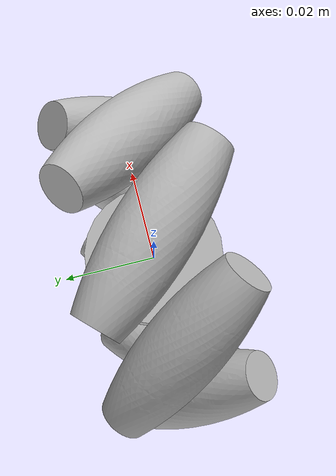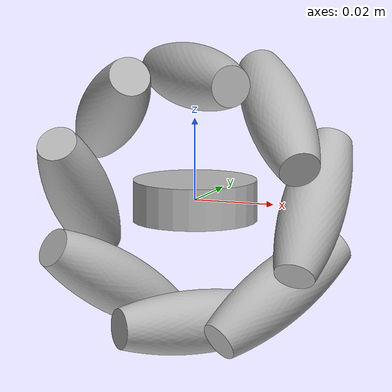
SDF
<sdf version="1.11">
 <model name="mecanum-wheel">
  <static>false</static>
  <link name="mecanum-base">
   <pose>0 0 0 0 0 0</pose>
   <visual name="mb-v">
    <geometry>
     <cylinder>
      <radius>0.015</radius>
      <length>0.01</length>
     </cylinder>
    </geometry>
   </visual>
   <collision name="mb-c">
    <geometry>
     <cylinder>
      <radius>0.015</radius>
      <length>0.01</length>
     </cylinder>
    </geometry>
   </collision>
  </link>
  <link name="mw-l1">
   <pose>0.0 0 0.03 0.0 -0.0 0.7853981633974483</pose>
   <inertial>
    <mass>0.00113845</mass>
    <inertia>
     <ixx>2.53776e-08</ixx>
     <ixy>0</ixy>
     <ixz>0</ixz>
     <iyy>2.53776e-08</iyy>
     <iyz>0</iyz>
     <izz>1.47666e-08</izz>
    </inertia>
    <pose frame="">0 0 0 0 0 0</pose>
   </inertial>
   <self_collide>0</self_collide>
   <kinematic>0</kinematic>
   <visual name="mw-l1-v">
    <geometry>
     <mesh>
      <uri>file://mecanum-roller.stl</uri>
      <scale>0.001 0.001 0.001</scale>
     </mesh>
    </geometry>
   </visual>
   <collision name="mw-l1-c">
    <geometry>
     <mesh>
      <uri>file://mecanum-roller.stl</uri>
      <scale>0.001 0.001 0.001</scale>
     </mesh>
    </geometry>
    <surface>
     <friction>
      <ode>
       <mu>1</mu>
       <mu2>1</mu2>
       <fdir1>0 0 0</fdir1>
       <slip1>1000</slip1>
       <slip2>0</slip2>
      </ode>
      <torsional>
       <coefficient>1</coefficient>
       <patch_radius>0</patch_radius>
       <surface_radius>0</surface_radius>
       <use_patch_radius>1</use_patch_radius>
       <ode>
        <slip>0</slip>
       </ode>
      </torsional>
     </friction>
     <bounce>
      <restitution_coefficient>0</restitution_coefficient>
      <threshold>1000000.0</threshold>
     </bounce>
     <contact>
      <collide_without_contact>0</collide_without_contact>
      <collide_without_contact_bitmask>1</collide_without_contact_bitmask>
      <collide_bitmask>1</collide_bitmask>
      <ode>
       <soft_cfm>0.5</soft_cfm>
       <soft_erp>0.8</soft_erp>
       <kp>1e+13</kp>
       <kd>1</kd>
       <max_vel>0.01</max_vel>
       <min_depth>0</min_depth>
      </ode>
      <bullet>
       <split_impulse>1</split_impulse>
       <split_impulse_penetration_threshold>-0.01</split_impulse_penetration_threshold>
       <soft_cfm>0.5</soft_cfm>
       <soft_erp>0.8</soft_erp>
       <kp>1e+13</kp>
       <kd>1</kd>
      </bullet>
     </contact>
    </surface>
   </collision>
  </link>
  <link name="mw-l2">
   <pose>0.021213203435596423 0 0.021213203435596427 0.6154797086703871 0.5235987755982989 0.9553166181245092</pose>
   <inertial>
    <mass>0.00113845</mass>
    <inertia>
     <ixx>2.53776e-08</ixx>
     <ixy>0</ixy>
     <ixz>0</ixz>
     <iyy>2.53776e-08</iyy>
     <iyz>0</iyz>
     <izz>1.47666e-08</izz>
    </inertia>
    <pose frame="">0 0 0 0 0 0</pose>
   </inertial>
   <self_collide>0</self_collide>
   <kinematic>0</kinematic>
   <visual name="mw-l2-v">
    <geometry>
     <mesh>
      <uri>file://mecanum-roller.stl</uri>
      <scale>0.001 0.001 0.001</scale>
     </mesh>
    </geometry>
   </visual>
   <collision name="mw-l2-c">
    <geometry>
     <mesh>
      <uri>file://mecanum-roller.stl</uri>
      <scale>0.001 0.001 0.001</scale>
     </mesh>
    </geometry>
    <surface>
     <friction>
      <ode>
       <mu>1</mu>
       <mu2>1</mu2>
       <fdir1>0 0 0</fdir1>
       <slip1>1000</slip1>
       <slip2>0</slip2>
      </ode>
      <torsional>
       <coefficient>1</coefficient>
       <patch_radius>0</patch_radius>
       <surface_radius>0</surface_radius>
       <use_patch_radius>1</use_patch_radius>
       <ode>
        <slip>0</slip>
       </ode>
      </torsional>
     </friction>
     <bounce>
      <restitution_coefficient>0</restitution_coefficient>
      <threshold>1000000.0</threshold>
     </bounce>
     <contact>
      <collide_without_contact>0</collide_without_contact>
      <collide_without_contact_bitmask>1</collide_without_contact_bitmask>
      <collide_bitmask>1</collide_bitmask>
      <ode>
       <soft_cfm>0.5</soft_cfm>
       <soft_erp>0.8</soft_erp>
       <kp>1e+13</kp>
       <kd>1</kd>
       <max_vel>0.01</max_vel>
       <min_depth>0</min_depth>
      </ode>
      <bullet>
       <split_impulse>1</split_impulse>
       <split_impulse_penetration_threshold>-0.01</split_impulse_penetration_threshold>
       <soft_cfm>0.5</soft_cfm>
       <soft_erp>0.8</soft_erp>
       <kp>1e+13</kp>
       <kd>1</kd>
      </bullet>
     </contact>
    </surface>
   </collision>
  </link>
  <link name="mw-l3">
   <pose>0.03 0 1.8369701987210296e-18 1.5707963267948966 0.7853981633974484 1.5707963267948966</pose>
   <inertial>
    <mass>0.00113845</mass>
    <inertia>
     <ixx>2.53776e-08</ixx>
     <ixy>0</ixy>
     <ixz>0</ixz>
     <iyy>2.53776e-08</iyy>
     <iyz>0</iyz>
     <izz>1.47666e-08</izz>
    </inertia>
    <pose frame="">0 0 0 0 0 0</pose>
   </inertial>
   <self_collide>0</self_collide>
   <kinematic>0</kinematic>
   <visual name="mw-l3-v">
    <geometry>
     <mesh>
      <uri>file://mecanum-roller.stl</uri>
      <scale>0.001 0.001 0.001</scale>
     </mesh>
    </geometry>
   </visual>
   <collision name="mw-l3-c">
    <geometry>
     <mesh>
      <uri>file://mecanum-roller.stl</uri>
      <scale>0.001 0.001 0.001</scale>
     </mesh>
    </geometry>
    <surface>
     <friction>
      <ode>
       <mu>1</mu>
       <mu2>1</mu2>
       <fdir1>0 0 0</fdir1>
       <slip1>1000</slip1>
       <slip2>0</slip2>
      </ode>
      <torsional>
       <coefficient>1</coefficient>
       <patch_radius>0</patch_radius>
       <surface_radius>0</surface_radius>
       <use_patch_radius>1</use_patch_radius>
       <ode>
        <slip>0</slip>
       </ode>
      </torsional>
     </friction>
     <bounce>
      <restitution_coefficient>0</restitution_coefficient>
      <threshold>1000000.0</threshold>
     </bounce>
     <contact>
      <collide_without_contact>0</collide_without_contact>
      <collide_without_contact_bitmask>1</collide_without_contact_bitmask>
      <collide_bitmask>1</collide_bitmask>
      <ode>
       <soft_cfm>0.5</soft_cfm>
       <soft_erp>0.8</soft_erp>
       <kp>1e+13</kp>
       <kd>1</kd>
       <max_vel>0.01</max_vel>
       <min_depth>0</min_depth>
      </ode>
      <bullet>
       <split_impulse>1</split_impulse>
       <split_impulse_penetration_threshold>-0.01</split_impulse_penetration_threshold>
       <soft_cfm>0.5</soft_cfm>
       <soft_erp>0.8</soft_erp>
       <kp>1e+13</kp>
       <kd>1</kd>
      </bullet>
     </contact>
    </surface>
   </collision>
  </link>
  <link name="mw-l4">
   <pose>0.021213203435596427 0 -0.021213203435596423 2.5261129449194057 0.523598775598299 2.186276035465284</pose>
   <inertial>
    <mass>0.00113845</mass>
    <inertia>
     <ixx>2.53776e-08</ixx>
     <ixy>0</ixy>
     <ixz>0</ixz>
     <iyy>2.53776e-08</iyy>
     <iyz>0</iyz>
     <izz>1.47666e-08</izz>
    </inertia>
    <pose frame="">0 0 0 0 0 0</pose>
   </inertial>
   <self_collide>0</self_collide>
   <kinematic>0</kinematic>
   <visual name="mw-l4-v">
    <geometry>
     <mesh>
      <uri>file://mecanum-roller.stl</uri>
      <scale>0.001 0.001 0.001</scale>
     </mesh>
    </geometry>
   </visual>
   <collision name="mw-l4-c">
    <geometry>
     <mesh>
      <uri>file://mecanum-roller.stl</uri>
      <scale>0.001 0.001 0.001</scale>
     </mesh>
    </geometry>
    <surface>
     <friction>
      <ode>
       <mu>1</mu>
       <mu2>1</mu2>
       <fdir1>0 0 0</fdir1>
       <slip1>1000</slip1>
       <slip2>0</slip2>
      </ode>
      <torsional>
       <coefficient>1</coefficient>
       <patch_radius>0</patch_radius>
       <surface_radius>0</surface_radius>
       <use_patch_radius>1</use_patch_radius>
       <ode>
        <slip>0</slip>
       </ode>
      </torsional>
     </friction>
     <bounce>
      <restitution_coefficient>0</restitution_coefficient>
      <threshold>1000000.0</threshold>
     </bounce>
     <contact>
      <collide_without_contact>0</collide_without_contact>
      <collide_without_contact_bitmask>1</collide_without_contact_bitmask>
      <collide_bitmask>1</collide_bitmask>
      <ode>
       <soft_cfm>0.5</soft_cfm>
       <soft_erp>0.8</soft_erp>
       <kp>1e+13</kp>
       <kd>1</kd>
       <max_vel>0.01</max_vel>
       <min_depth>0</min_depth>
      </ode>
      <bullet>
       <split_impulse>1</split_impulse>
       <split_impulse_penetration_threshold>-0.01</split_impulse_penetration_threshold>
       <soft_cfm>0.5</soft_cfm>
       <soft_erp>0.8</soft_erp>
       <kp>1e+13</kp>
       <kd>1</kd>
      </bullet>
     </contact>
    </surface>
   </collision>
  </link>
  <link name="mw-l5">
   <pose>3.673940397442059e-18 0 -0.03 3.141592653589793 8.659560562354934e-17 2.356194490192345</pose>
   <inertial>
    <mass>0.00113845</mass>
    <inertia>
     <ixx>2.53776e-08</ixx>
     <ixy>0</ixy>
     <ixz>0</ixz>
     <iyy>2.53776e-08</iyy>
     <iyz>0</iyz>
     <izz>1.47666e-08</izz>
    </inertia>
    <pose frame="">0 0 0 0 0 0</pose>
   </inertial>
   <self_collide>0</self_collide>
   <kinematic>0</kinematic>
   <visual name="mw-l5-v">
    <geometry>
     <mesh>
      <uri>file://mecanum-roller.stl</uri>
      <scale>0.001 0.001 0.001</scale>
     </mesh>
    </geometry>
   </visual>
   <collision name="mw-l5-c">
    <geometry>
     <mesh>
      <uri>file://mecanum-roller.stl</uri>
      <scale>0.001 0.001 0.001</scale>
     </mesh>
    </geometry>
    <surface>
     <friction>
      <ode>
       <mu>1</mu>
       <mu2>1</mu2>
       <fdir1>0 0 0</fdir1>
       <slip1>1000</slip1>
       <slip2>0</slip2>
      </ode>
      <torsional>
       <coefficient>1</coefficient>
       <patch_radius>0</patch_radius>
       <surface_radius>0</surface_radius>
       <use_patch_radius>1</use_patch_radius>
       <ode>
        <slip>0</slip>
       </ode>
      </torsional>
     </friction>
     <bounce>
      <restitution_coefficient>0</restitution_coefficient>
      <threshold>1000000.0</threshold>
     </bounce>
     <contact>
      <collide_without_contact>0</collide_without_contact>
      <collide_without_contact_bitmask>1</collide_without_contact_bitmask>
      <collide_bitmask>1</collide_bitmask>
      <ode>
       <soft_cfm>0.5</soft_cfm>
       <soft_erp>0.8</soft_erp>
       <kp>1e+13</kp>
       <kd>1</kd>
       <max_vel>0.01</max_vel>
       <min_depth>0</min_depth>
      </ode>
      <bullet>
       <split_impulse>1</split_impulse>
       <split_impulse_penetration_threshold>-0.01</split_impulse_penetration_threshold>
       <soft_cfm>0.5</soft_cfm>
       <soft_erp>0.8</soft_erp>
       <kp>1e+13</kp>
       <kd>1</kd>
      </bullet>
     </contact>
    </surface>
   </collision>
  </link>
  <link name="mw-l6">
   <pose>-0.021213203435596423 0 -0.02121320343559643 -2.526112944919406 -0.5235987755982988 2.186276035465284</pose>
   <inertial>
    <mass>0.00113845</mass>
    <inertia>
     <ixx>2.53776e-08</ixx>
     <ixy>0</ixy>
     <ixz>0</ixz>
     <iyy>2.53776e-08</iyy>
     <iyz>0</iyz>
     <izz>1.47666e-08</izz>
    </inertia>
    <pose frame="">0 0 0 0 0 0</pose>
   </inertial>
   <self_collide>0</self_collide>
   <kinematic>0</kinematic>
   <visual name="mw-l6-v">
    <geometry>
     <mesh>
      <uri>file://mecanum-roller.stl</uri>
      <scale>0.001 0.001 0.001</scale>
     </mesh>
    </geometry>
   </visual>
   <collision name="mw-l6-c">
    <geometry>
     <mesh>
      <uri>file://mecanum-roller.stl</uri>
      <scale>0.001 0.001 0.001</scale>
     </mesh>
    </geometry>
    <surface>
     <friction>
      <ode>
       <mu>1</mu>
       <mu2>1</mu2>
       <fdir1>0 0 0</fdir1>
       <slip1>1000</slip1>
       <slip2>0</slip2>
      </ode>
      <torsional>
       <coefficient>1</coefficient>
       <patch_radius>0</patch_radius>
       <surface_radius>0</surface_radius>
       <use_patch_radius>1</use_patch_radius>
       <ode>
        <slip>0</slip>
       </ode>
      </torsional>
     </friction>
     <bounce>
      <restitution_coefficient>0</restitution_coefficient>
      <threshold>1000000.0</threshold>
     </bounce>
     <contact>
      <collide_without_contact>0</collide_without_contact>
      <collide_without_contact_bitmask>1</collide_without_contact_bitmask>
      <collide_bitmask>1</collide_bitmask>
      <ode>
       <soft_cfm>0.5</soft_cfm>
       <soft_erp>0.8</soft_erp>
       <kp>1e+13</kp>
       <kd>1</kd>
       <max_vel>0.01</max_vel>
       <min_depth>0</min_depth>
      </ode>
      <bullet>
       <split_impulse>1</split_impulse>
       <split_impulse_penetration_threshold>-0.01</split_impulse_penetration_threshold>
       <soft_cfm>0.5</soft_cfm>
       <soft_erp>0.8</soft_erp>
       <kp>1e+13</kp>
       <kd>1</kd>
      </bullet>
     </contact>
    </surface>
   </collision>
  </link>
  <link name="mw-l7">
   <pose>-0.03 0 -5.510910596163089e-18 -1.5707963267948968 -0.7853981633974484 1.5707963267948968</pose>
   <inertial>
    <mass>0.00113845</mass>
    <inertia>
     <ixx>2.53776e-08</ixx>
     <ixy>0</ixy>
     <ixz>0</ixz>
     <iyy>2.53776e-08</iyy>
     <iyz>0</iyz>
     <izz>1.47666e-08</izz>
    </inertia>
    <pose frame="">0 0 0 0 0 0</pose>
   </inertial>
   <self_collide>0</self_collide>
   <kinematic>0</kinematic>
   <visual name="mw-l7-v">
    <geometry>
     <mesh>
      <uri>file://mecanum-roller.stl</uri>
      <scale>0.001 0.001 0.001</scale>
     </mesh>
    </geometry>
   </visual>
   <collision name="mw-l7-c">
    <geometry>
     <mesh>
      <uri>file://mecanum-roller.stl</uri>
      <scale>0.001 0.001 0.001</scale>
     </mesh>
    </geometry>
    <surface>
     <friction>
      <ode>
       <mu>1</mu>
       <mu2>1</mu2>
       <fdir1>0 0 0</fdir1>
       <slip1>1000</slip1>
       <slip2>0</slip2>
      </ode>
      <torsional>
       <coefficient>1</coefficient>
       <patch_radius>0</patch_radius>
       <surface_radius>0</surface_radius>
       <use_patch_radius>1</use_patch_radius>
       <ode>
        <slip>0</slip>
       </ode>
      </torsional>
     </friction>
     <bounce>
      <restitution_coefficient>0</restitution_coefficient>
      <threshold>1000000.0</threshold>
     </bounce>
     <contact>
      <collide_without_contact>0</collide_without_contact>
      <collide_without_contact_bitmask>1</collide_without_contact_bitmask>
      <collide_bitmask>1</collide_bitmask>
      <ode>
       <soft_cfm>0.5</soft_cfm>
       <soft_erp>0.8</soft_erp>
       <kp>1e+13</kp>
       <kd>1</kd>
       <max_vel>0.01</max_vel>
       <min_depth>0</min_depth>
      </ode>
      <bullet>
       <split_impulse>1</split_impulse>
       <split_impulse_penetration_threshold>-0.01</split_impulse_penetration_threshold>
       <soft_cfm>0.5</soft_cfm>
       <soft_erp>0.8</soft_erp>
       <kp>1e+13</kp>
       <kd>1</kd>
      </bullet>
     </contact>
    </surface>
   </collision>
  </link>
  <link name="mw-l8">
   <pose>-0.02121320343559643 0 0.02121320343559642 -0.6154797086703876 -0.523598775598299 0.9553166181245093</pose>
   <inertial>
    <mass>0.00113845</mass>
    <inertia>
     <ixx>2.53776e-08</ixx>
     <ixy>0</ixy>
     <ixz>0</ixz>
     <iyy>2.53776e-08</iyy>
     <iyz>0</iyz>
     <izz>1.47666e-08</izz>
    </inertia>
    <pose frame="">0 0 0 0 0 0</pose>
   </inertial>
   <self_collide>0</self_collide>
   <kinematic>0</kinematic>
   <visual name="mw-l8-v">
    <geometry>
     <mesh>
      <uri>file://mecanum-roller.stl</uri>
      <scale>0.001 0.001 0.001</scale>
     </mesh>
    </geometry>
   </visual>
   <collision name="mw-l8-c">
    <geometry>
     <mesh>
      <uri>file://mecanum-roller.stl</uri>
      <scale>0.001 0.001 0.001</scale>
     </mesh>
    </geometry>
    <surface>
     <friction>
      <ode>
       <mu>1</mu>
       <mu2>1</mu2>
       <fdir1>0 0 0</fdir1>
       <slip1>1000</slip1>
       <slip2>0</slip2>
      </ode>
      <torsional>
       <coefficient>1</coefficient>
       <patch_radius>0</patch_radius>
       <surface_radius>0</surface_radius>
       <use_patch_radius>1</use_patch_radius>
       <ode>
        <slip>0</slip>
       </ode>
      </torsional>
     </friction>
     <bounce>
      <restitution_coefficient>0</restitution_coefficient>
      <threshold>1000000.0</threshold>
     </bounce>
     <contact>
      <collide_without_contact>0</collide_without_contact>
      <collide_without_contact_bitmask>1</collide_without_contact_bitmask>
      <collide_bitmask>1</collide_bitmask>
      <ode>
       <soft_cfm>0.5</soft_cfm>
       <soft_erp>0.8</soft_erp>
       <kp>1e+13</kp>
       <kd>1</kd>
       <max_vel>0.01</max_vel>
       <min_depth>0</min_depth>
      </ode>
      <bullet>
       <split_impulse>1</split_impulse>
       <split_impulse_penetration_threshold>-0.01</split_impulse_penetration_threshold>
       <soft_cfm>0.5</soft_cfm>
       <soft_erp>0.8</soft_erp>
       <kp>1e+13</kp>
       <kd>1</kd>
      </bullet>
     </contact>
    </surface>
   </collision>
  </link>
  <joint name="mw-j1" type="revolute">
   <pose>0 0 0 0 0 0</pose>
   <parent>mecanum-base</parent>
   <child>mw-l1</child>
   <axis>
    <xyz>0 1 0</xyz>
    <limit>
     <lower>-1.79769e+308</lower>
     <upper>1.79769e+308</upper>
     <effort>-1</effort>
     <velocity>-1</velocity>
    </limit>
    <dynamics>
     <spring_reference>0</spring_reference>
     <spring_stiffness>0</spring_stiffness>
     <damping>0</damping>
     <friction>0</friction>
    </dynamics>
   </axis>
   <physics>
    <ode>
     <limit>
      <cfm>0</cfm>
      <erp>0.2</erp>
     </limit>
     <suspension>
      <cfm>0</cfm>
      <erp>0.2</erp>
     </suspension>
    </ode>
   </physics>
  </joint>
  <joint name="mw-j2" type="revolute">
   <pose>0 0 0 0 0 0</pose>
   <parent>mecanum-base</parent>
   <child>mw-l2</child>
   <axis>
    <xyz>0 1 0</xyz>
    <limit>
     <lower>-1.79769e+308</lower>
     <upper>1.79769e+308</upper>
     <effort>-1</effort>
     <velocity>-1</velocity>
    </limit>
    <dynamics>
     <spring_reference>0</spring_reference>
     <spring_stiffness>0</spring_stiffness>
     <damping>0</damping>
     <friction>0</friction>
    </dynamics>
   </axis>
   <physics>
    <ode>
     <limit>
      <cfm>0</cfm>
      <erp>0.2</erp>
     </limit>
     <suspension>
      <cfm>0</cfm>
      <erp>0.2</erp>
     </suspension>
    </ode>
   </physics>
  </joint>
  <joint name="mw-j3" type="revolute">
   <pose>0 0 0 0 0 0</pose>
   <parent>mecanum-base</parent>
   <child>mw-l3</child>
   <axis>
    <xyz>0 1 0</xyz>
    <limit>
     <lower>-1.79769e+308</lower>
     <upper>1.79769e+308</upper>
     <effort>-1</effort>
     <velocity>-1</velocity>
    </limit>
    <dynamics>
     <spring_reference>0</spring_reference>
     <spring_stiffness>0</spring_stiffness>
     <damping>0</damping>
     <friction>0</friction>
    </dynamics>
   </axis>
   <physics>
    <ode>
     <limit>
      <cfm>0</cfm>
      <erp>0.2</erp>
     </limit>
     <suspension>
      <cfm>0</cfm>
      <erp>0.2</erp>
     </suspension>
    </ode>
   </physics>
  </joint>
  <joint name="mw-j4" type="revolute">
   <pose>0 0 0 0 0 0</pose>
   <parent>mecanum-base</parent>
   <child>mw-l4</child>
   <axis>
    <xyz>0 1 0</xyz>
    <limit>
     <lower>-1.79769e+308</lower>
     <upper>1.79769e+308</upper>
     <effort>-1</effort>
     <velocity>-1</velocity>
    </limit>
    <dynamics>
     <spring_reference>0</spring_reference>
     <spring_stiffness>0</spring_stiffness>
     <damping>0</damping>
     <friction>0</friction>
    </dynamics>
   </axis>
   <physics>
    <ode>
     <limit>
      <cfm>0</cfm>
      <erp>0.2</erp>
     </limit>
     <suspension>
      <cfm>0</cfm>
      <erp>0.2</erp>
     </suspension>
    </ode>
   </physics>
  </joint>
  <joint name="mw-j5" type="revolute">
   <pose>0 0 0 0 0 0</pose>
   <parent>mecanum-base</parent>
   <child>mw-l5</child>
   <axis>
    <xyz>0 1 0</xyz>
    <limit>
     <lower>-1.79769e+308</lower>
     <upper>1.79769e+308</upper>
     <effort>-1</effort>
     <velocity>-1</velocity>
    </limit>
    <dynamics>
     <spring_reference>0</spring_reference>
     <spring_stiffness>0</spring_stiffness>
     <damping>0</damping>
     <friction>0</friction>
    </dynamics>
   </axis>
   <physics>
    <ode>
     <limit>
      <cfm>0</cfm>
      <erp>0.2</erp>
     </limit>
     <suspension>
      <cfm>0</cfm>
      <erp>0.2</erp>
     </suspension>
    </ode>
   </physics>
  </joint>
  <joint name="mw-j6" type="revolute">
   <pose>0 0 0 0 0 0</pose>
   <parent>mecanum-base</parent>
   <child>mw-l6</child>
   <axis>
    <xyz>0 1 0</xyz>
    <limit>
     <lower>-1.79769e+308</lower>
     <upper>1.79769e+308</upper>
     <effort>-1</effort>
     <velocity>-1</velocity>
    </limit>
    <dynamics>
     <spring_reference>0</spring_reference>
     <spring_stiffness>0</spring_stiffness>
     <damping>0</damping>
     <friction>0</friction>
    </dynamics>
   </axis>
   <physics>
    <ode>
     <limit>
      <cfm>0</cfm>
      <erp>0.2</erp>
     </limit>
     <suspension>
      <cfm>0</cfm>
      <erp>0.2</erp>
     </suspension>
    </ode>
   </physics>
  </joint>
  <joint name="mw-j7" type="revolute">
   <pose>0 0 0 0 0 0</pose>
   <parent>mecanum-base</parent>
   <child>mw-l7</child>
   <axis>
    <xyz>0 1 0</xyz>
    <limit>
     <lower>-1.79769e+308</lower>
     <upper>1.79769e+308</upper>
     <effort>-1</effort>
     <velocity>-1</velocity>
    </limit>
    <dynamics>
     <spring_reference>0</spring_reference>
     <spring_stiffness>0</spring_stiffness>
     <damping>0</damping>
     <friction>0</friction>
    </dynamics>
   </axis>
   <physics>
    <ode>
     <limit>
      <cfm>0</cfm>
      <erp>0.2</erp>
     </limit>
     <suspension>
      <cfm>0</cfm>
      <erp>0.2</erp>
     </suspension>
    </ode>
   </physics>
  </joint>
  <joint name="mw-j8" type="revolute">
   <pose>0 0 0 0 0 0</pose>
   <parent>mecanum-base</parent>
   <child>mw-l8</child>
   <axis>
    <xyz>0 1 0</xyz>
    <limit>
     <lower>-1.79769e+308</lower>
     <upper>1.79769e+308</upper>
     <effort>-1</effort>
     <velocity>-1</velocity>
    </limit>
    <dynamics>
     <spring_reference>0</spring_reference>
     <spring_stiffness>0</spring_stiffness>
     <damping>0</damping>
     <friction>0</friction>
    </dynamics>
   </axis>
   <physics>
    <ode>
     <limit>
      <cfm>0</cfm>
      <erp>0.2</erp>
     </limit>
     <suspension>
      <cfm>0</cfm>
      <erp>0.2</erp>
     </suspension>
    </ode>
   </physics>
  </joint>
 </model>
</sdf>
